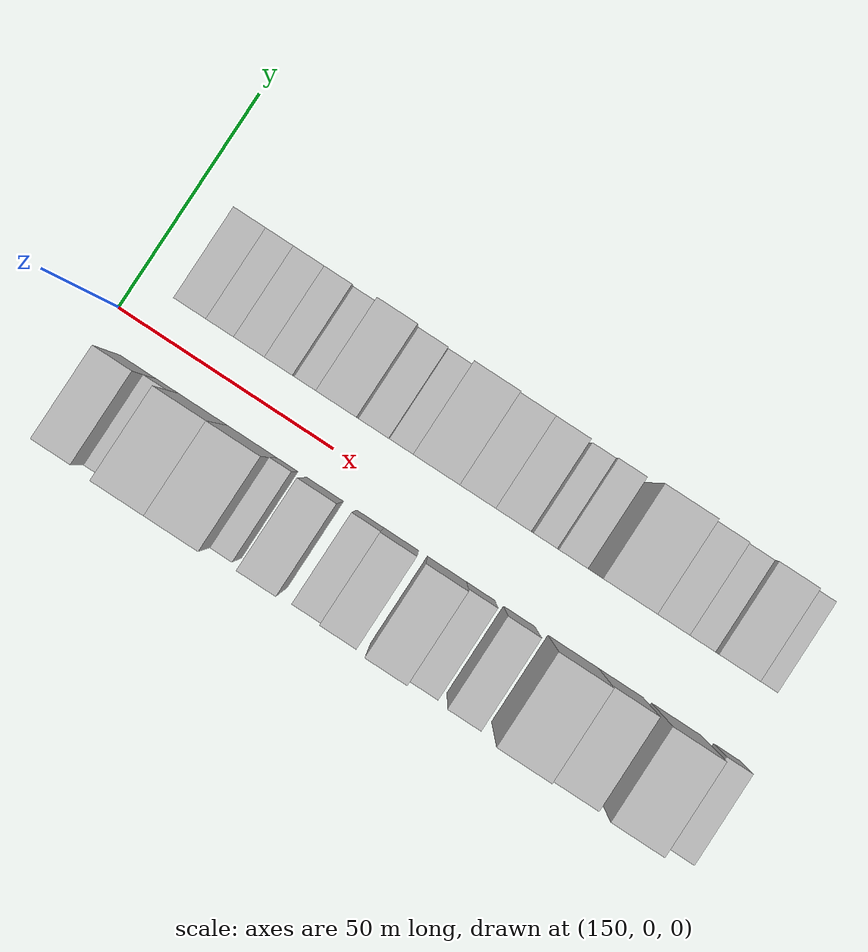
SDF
<sdf version="1.6">
 <world name="default">
  <model name="building_17">
   <static>1</static>
   <pose>164.9590 17.5000 0 0.000000 0.000000 1.570796</pose>
   <link name="link">
    <pose>0 0 7.50 0 0 0</pose>
    <collision name="collision"><geometry><box><size>20.0000 7.0706 15.0000</size></box></geometry></collision>
    <visual name="visual">
     <cast_shadows>0</cast_shadows>
     <geometry><box><size>20.0000 7.0706 15.0000</size></box></geometry>
     <material>
      <script>
       <uri>model://HANNAS_wall/materials/scripts</uri>
       <uri>model://HANNAS_wall/materials/textures</uri>
       <name>vrc/HANNAS_wall</name>
      </script>
     </material>
    </visual>
   </link>
  </model>
  <model name="building_18">
   <static>1</static>
   <pose>171.5373 17.5000 0 0.000000 0.000000 1.570796</pose>
   <link name="link">
    <pose>0 0 7.50 0 0 0</pose>
    <collision name="collision"><geometry><box><size>20.0000 6.0860 15.0000</size></box></geometry></collision>
    <visual name="visual">
     <cast_shadows>0</cast_shadows>
     <geometry><box><size>20.0000 6.0860 15.0000</size></box></geometry>
     <material>
      <script>
       <uri>model://HANNAS_wall/materials/scripts</uri>
       <uri>model://HANNAS_wall/materials/textures</uri>
       <name>vrc/HANNAS_wall</name>
      </script>
     </material>
    </visual>
   </link>
  </model>
  <model name="building_19">
   <static>1</static>
   <pose>177.9470 17.5000 0 0.000000 0.000000 1.570796</pose>
   <link name="link">
    <pose>0 0 7.50 0 0 0</pose>
    <collision name="collision"><geometry><box><size>20.0000 6.7334 15.0000</size></box></geometry></collision>
    <visual name="visual">
     <cast_shadows>0</cast_shadows>
     <geometry><box><size>20.0000 6.7334 15.0000</size></box></geometry>
     <material>
      <script>
       <uri>model://HANNAS_wall/materials/scripts</uri>
       <uri>model://HANNAS_wall/materials/textures</uri>
       <name>vrc/HANNAS_wall</name>
      </script>
     </material>
    </visual>
   </link>
  </model>
  <model name="building_20">
   <static>1</static>
   <pose>184.3895 17.5000 0 0.000000 0.000000 1.570796</pose>
   <link name="link">
    <pose>0 0 7.50 0 0 0</pose>
    <collision name="collision"><geometry><box><size>20.0000 6.1515 15.0000</size></box></geometry></collision>
    <visual name="visual">
     <cast_shadows>0</cast_shadows>
     <geometry><box><size>20.0000 6.1515 15.0000</size></box></geometry>
     <material>
      <script>
       <uri>model://HANNAS_wall/materials/scripts</uri>
       <uri>model://HANNAS_wall/materials/textures</uri>
       <name>vrc/HANNAS_wall</name>
      </script>
     </material>
    </visual>
   </link>
  </model>
  <model name="building_21">
   <static>1</static>
   <pose>190.3441 17.5000 0 0.000000 0.000000 1.570796</pose>
   <link name="link">
    <pose>0 0 6.00 0 0 0</pose>
    <collision name="collision"><geometry><box><size>20.0000 5.7578 12.0000</size></box></geometry></collision>
    <visual name="visual">
     <cast_shadows>0</cast_shadows>
     <geometry><box><size>20.0000 5.7578 12.0000</size></box></geometry>
     <material>
      <script>
       <uri>model://HANNAS_wall/materials/scripts</uri>
       <uri>model://HANNAS_wall/materials/textures</uri>
       <name>vrc/HANNAS_wall</name>
      </script>
     </material>
    </visual>
   </link>
  </model>
  <model name="building_22">
   <static>1</static>
   <pose>197.5777 17.5000 0 0.000000 0.000000 1.570796</pose>
   <link name="link">
    <pose>0 0 10.50 0 0 0</pose>
    <collision name="collision"><geometry><box><size>20.0000 8.7095 21.0000</size></box></geometry></collision>
    <visual name="visual">
     <cast_shadows>0</cast_shadows>
     <geometry><box><size>20.0000 8.7095 21.0000</size></box></geometry>
     <material>
      <script>
       <uri>model://HANNAS_wall/materials/scripts</uri>
       <uri>model://HANNAS_wall/materials/textures</uri>
       <name>vrc/HANNAS_wall</name>
      </script>
     </material>
    </visual>
   </link>
  </model>
  <model name="building_23">
   <static>1</static>
   <pose>205.2382 17.5000 0 0.000000 0.000000 1.570796</pose>
   <link name="link">
    <pose>0 0 7.50 0 0 0</pose>
    <collision name="collision"><geometry><box><size>20.0000 6.6115 15.0000</size></box></geometry></collision>
    <visual name="visual">
     <cast_shadows>0</cast_shadows>
     <geometry><box><size>20.0000 6.6115 15.0000</size></box></geometry>
     <material>
      <script>
       <uri>model://HANNAS_wall/materials/scripts</uri>
       <uri>model://HANNAS_wall/materials/textures</uri>
       <name>vrc/HANNAS_wall</name>
      </script>
     </material>
    </visual>
   </link>
  </model>
  <model name="building_24">
   <static>1</static>
   <pose>211.2773 17.5000 0 0.000000 0.000000 1.570796</pose>
   <link name="link">
    <pose>0 0 6.00 0 0 0</pose>
    <collision name="collision"><geometry><box><size>20.0000 5.4667 12.0000</size></box></geometry></collision>
    <visual name="visual">
     <cast_shadows>0</cast_shadows>
     <geometry><box><size>20.0000 5.4667 12.0000</size></box></geometry>
     <material>
      <script>
       <uri>model://HANNAS_wall/materials/scripts</uri>
       <uri>model://HANNAS_wall/materials/textures</uri>
       <name>vrc/HANNAS_wall</name>
      </script>
     </material>
    </visual>
   </link>
  </model>
  <model name="building_25">
   <static>1</static>
   <pose>218.9881 17.5000 0 0.000000 0.000000 1.570796</pose>
   <link name="link">
    <pose>0 0 10.50 0 0 0</pose>
    <collision name="collision"><geometry><box><size>20.0000 9.9550 21.0000</size></box></geometry></collision>
    <visual name="visual">
     <cast_shadows>0</cast_shadows>
     <geometry><box><size>20.0000 9.9550 21.0000</size></box></geometry>
     <material>
      <script>
       <uri>model://HANNAS_wall/materials/scripts</uri>
       <uri>model://HANNAS_wall/materials/textures</uri>
       <name>vrc/HANNAS_wall</name>
      </script>
     </material>
    </visual>
   </link>
  </model>
  <model name="building_26">
   <static>1</static>
   <pose>227.8656 17.5000 0 0.000000 0.000000 1.570796</pose>
   <link name="link">
    <pose>0 0 9.00 0 0 0</pose>
    <collision name="collision"><geometry><box><size>20.0000 7.7998 18.0000</size></box></geometry></collision>
    <visual name="visual">
     <cast_shadows>0</cast_shadows>
     <geometry><box><size>20.0000 7.7998 18.0000</size></box></geometry>
     <material>
      <script>
       <uri>model://HANNAS_wall/materials/scripts</uri>
       <uri>model://HANNAS_wall/materials/textures</uri>
       <name>vrc/HANNAS_wall</name>
      </script>
     </material>
    </visual>
   </link>
  </model>
  <model name="building_27">
   <static>1</static>
   <pose>235.5774 17.5000 0 0.000000 0.000000 1.570796</pose>
   <link name="link">
    <pose>0 0 9.00 0 0 0</pose>
    <collision name="collision"><geometry><box><size>20.0000 7.6239 18.0000</size></box></geometry></collision>
    <visual name="visual">
     <cast_shadows>0</cast_shadows>
     <geometry><box><size>20.0000 7.6239 18.0000</size></box></geometry>
     <material>
      <script>
       <uri>model://HANNAS_wall/materials/scripts</uri>
       <uri>model://HANNAS_wall/materials/textures</uri>
       <name>vrc/HANNAS_wall</name>
      </script>
     </material>
    </visual>
   </link>
  </model>
  <model name="building_28">
   <static>1</static>
   <pose>243.0308 17.5000 0 0.000000 0.000000 1.570796</pose>
   <link name="link">
    <pose>0 0 6.00 0 0 0</pose>
    <collision name="collision"><geometry><box><size>20.0000 5.2829 12.0000</size></box></geometry></collision>
    <visual name="visual">
     <cast_shadows>0</cast_shadows>
     <geometry><box><size>20.0000 5.2829 12.0000</size></box></geometry>
     <material>
      <script>
       <uri>model://HANNAS_wall/materials/scripts</uri>
       <uri>model://HANNAS_wall/materials/textures</uri>
       <name>vrc/HANNAS_wall</name>
      </script>
     </material>
    </visual>
   </link>
  </model>
  <model name="building_29">
   <static>1</static>
   <pose>248.8422 17.5000 0 0.000000 0.000000 1.570796</pose>
   <link name="link">
    <pose>0 0 7.50 0 0 0</pose>
    <collision name="collision"><geometry><box><size>20.0000 6.3400 15.0000</size></box></geometry></collision>
    <visual name="visual">
     <cast_shadows>0</cast_shadows>
     <geometry><box><size>20.0000 6.3400 15.0000</size></box></geometry>
     <material>
      <script>
       <uri>model://HANNAS_wall/materials/scripts</uri>
       <uri>model://HANNAS_wall/materials/textures</uri>
       <name>vrc/HANNAS_wall</name>
      </script>
     </material>
    </visual>
   </link>
  </model>
  <model name="building_30">
   <static>1</static>
   <pose>259.7139 17.5000 0 0.000000 0.000000 1.570796</pose>
   <link name="link">
    <pose>0 0 12.00 0 0 0</pose>
    <collision name="collision"><geometry><box><size>20.0000 11.4034 24.0000</size></box></geometry></collision>
    <visual name="visual">
     <cast_shadows>0</cast_shadows>
     <geometry><box><size>20.0000 11.4034 24.0000</size></box></geometry>
     <material>
      <script>
       <uri>model://HANNAS_wall/materials/scripts</uri>
       <uri>model://HANNAS_wall/materials/textures</uri>
       <name>vrc/HANNAS_wall</name>
      </script>
     </material>
    </visual>
   </link>
  </model>
  <model name="building_31">
   <static>1</static>
   <pose>269.4701 17.5000 0 0.000000 0.000000 1.570796</pose>
   <link name="link">
    <pose>0 0 9.00 0 0 0</pose>
    <collision name="collision"><geometry><box><size>20.0000 8.1089 18.0000</size></box></geometry></collision>
    <visual name="visual">
     <cast_shadows>0</cast_shadows>
     <geometry><box><size>20.0000 8.1089 18.0000</size></box></geometry>
     <material>
      <script>
       <uri>model://HANNAS_wall/materials/scripts</uri>
       <uri>model://HANNAS_wall/materials/textures</uri>
       <name>vrc/HANNAS_wall</name>
      </script>
     </material>
    </visual>
   </link>
  </model>
  <model name="building_32">
   <static>1</static>
   <pose>276.6432 17.5000 0 0.000000 0.000000 1.570796</pose>
   <link name="link">
    <pose>0 0 7.50 0 0 0</pose>
    <collision name="collision"><geometry><box><size>20.0000 6.2373 15.0000</size></box></geometry></collision>
    <visual name="visual">
     <cast_shadows>0</cast_shadows>
     <geometry><box><size>20.0000 6.2373 15.0000</size></box></geometry>
     <material>
      <script>
       <uri>model://HANNAS_wall/materials/scripts</uri>
       <uri>model://HANNAS_wall/materials/textures</uri>
       <name>vrc/HANNAS_wall</name>
      </script>
     </material>
    </visual>
   </link>
  </model>
  <model name="building_33">
   <static>1</static>
   <pose>284.2250 17.5000 0 0.000000 0.000000 1.570796</pose>
   <link name="link">
    <pose>0 0 9.00 0 0 0</pose>
    <collision name="collision"><geometry><box><size>20.0000 8.9263 18.0000</size></box></geometry></collision>
    <visual name="visual">
     <cast_shadows>0</cast_shadows>
     <geometry><box><size>20.0000 8.9263 18.0000</size></box></geometry>
     <material>
      <script>
       <uri>model://HANNAS_wall/materials/scripts</uri>
       <uri>model://HANNAS_wall/materials/textures</uri>
       <name>vrc/HANNAS_wall</name>
      </script>
     </material>
    </visual>
   </link>
  </model>
  <model name="building_34">
   <static>1</static>
   <pose>291.4401 17.5000 0 0.000000 0.000000 1.570796</pose>
   <link name="link">
    <pose>0 0 6.00 0 0 0</pose>
    <collision name="collision"><geometry><box><size>20.0000 5.5039 12.0000</size></box></geometry></collision>
    <visual name="visual">
     <cast_shadows>0</cast_shadows>
     <geometry><box><size>20.0000 5.5039 12.0000</size></box></geometry>
     <material>
      <script>
       <uri>model://HANNAS_wall/materials/scripts</uri>
       <uri>model://HANNAS_wall/materials/textures</uri>
       <name>vrc/HANNAS_wall</name>
      </script>
     </material>
    </visual>
   </link>
  </model>
  <model name="building_49">
   <static>1</static>
   <pose>159.5983 -17.5000 0 0.000000 0.000000 1.570796</pose>
   <link name="link">
    <pose>0 0 10.50 0 0 0</pose>
    <collision name="collision"><geometry><box><size>20.0000 8.5033 21.0000</size></box></geometry></collision>
    <visual name="visual">
     <cast_shadows>0</cast_shadows>
     <geometry><box><size>20.0000 8.5033 21.0000</size></box></geometry>
     <material>
      <script>
       <uri>model://HANNAS_wall/materials/scripts</uri>
       <uri>model://HANNAS_wall/materials/textures</uri>
       <name>vrc/HANNAS_wall</name>
      </script>
     </material>
    </visual>
   </link>
  </model>
  <model name="building_50">
   <static>1</static>
   <pose>166.4137 -17.5000 0 0.000000 0.000000 1.570796</pose>
   <link name="link">
    <pose>0 0 6.00 0 0 0</pose>
    <collision name="collision"><geometry><box><size>20.0000 5.1275 12.0000</size></box></geometry></collision>
    <visual name="visual">
     <cast_shadows>0</cast_shadows>
     <geometry><box><size>20.0000 5.1275 12.0000</size></box></geometry>
     <material>
      <script>
       <uri>model://HANNAS_wall/materials/scripts</uri>
       <uri>model://HANNAS_wall/materials/textures</uri>
       <name>vrc/HANNAS_wall</name>
      </script>
     </material>
    </visual>
   </link>
  </model>
  <model name="building_51">
   <static>1</static>
   <pose>174.6377 -17.5000 0 0.000000 0.000000 1.570796</pose>
   <link name="link">
    <pose>0 0 12.00 0 0 0</pose>
    <collision name="collision"><geometry><box><size>20.0000 11.3205 24.0000</size></box></geometry></collision>
    <visual name="visual">
     <cast_shadows>0</cast_shadows>
     <geometry><box><size>20.0000 11.3205 24.0000</size></box></geometry>
     <material>
      <script>
       <uri>model://HANNAS_wall/materials/scripts</uri>
       <uri>model://HANNAS_wall/materials/textures</uri>
       <name>vrc/HANNAS_wall</name>
      </script>
     </material>
    </visual>
   </link>
  </model>
  <model name="building_52">
   <static>1</static>
   <pose>186.0555 -17.5000 0 0.000000 0.000000 1.570796</pose>
   <link name="link">
    <pose>0 0 12.00 0 0 0</pose>
    <collision name="collision"><geometry><box><size>20.0000 11.5151 24.0000</size></box></geometry></collision>
    <visual name="visual">
     <cast_shadows>0</cast_shadows>
     <geometry><box><size>20.0000 11.5151 24.0000</size></box></geometry>
     <material>
      <script>
       <uri>model://HANNAS_wall/materials/scripts</uri>
       <uri>model://HANNAS_wall/materials/textures</uri>
       <name>vrc/HANNAS_wall</name>
      </script>
     </material>
    </visual>
   </link>
  </model>
  <model name="building_53">
   <static>1</static>
   <pose>194.2568 -17.5000 0 0.000000 0.000000 1.570796</pose>
   <link name="link">
    <pose>0 0 6.00 0 0 0</pose>
    <collision name="collision"><geometry><box><size>20.0000 4.8873 12.0000</size></box></geometry></collision>
    <visual name="visual">
     <cast_shadows>0</cast_shadows>
     <geometry><box><size>20.0000 4.8873 12.0000</size></box></geometry>
     <material>
      <script>
       <uri>model://HANNAS_wall/materials/scripts</uri>
       <uri>model://HANNAS_wall/materials/textures</uri>
       <name>vrc/HANNAS_wall</name>
      </script>
     </material>
    </visual>
   </link>
  </model>
  <model name="building_54">
   <static>1</static>
   <pose>202.9828 -17.5000 0 0.000000 0.000000 1.570796</pose>
   <link name="link">
    <pose>0 0 9.00 0 0 0</pose>
    <collision name="collision"><geometry><box><size>20.0000 8.5646 18.0000</size></box></geometry></collision>
    <visual name="visual">
     <cast_shadows>0</cast_shadows>
     <geometry><box><size>20.0000 8.5646 18.0000</size></box></geometry>
     <material>
      <script>
       <uri>model://HANNAS_wall/materials/scripts</uri>
       <uri>model://HANNAS_wall/materials/textures</uri>
       <name>vrc/HANNAS_wall</name>
      </script>
     </material>
    </visual>
   </link>
  </model>
  <model name="building_55">
   <static>1</static>
   <pose>213.4610 -17.5000 0 0.000000 0.000000 1.570796</pose>
   <link name="link">
    <pose>0 0 7.50 0 0 0</pose>
    <collision name="collision"><geometry><box><size>20.0000 6.3919 15.0000</size></box></geometry></collision>
    <visual name="visual">
     <cast_shadows>0</cast_shadows>
     <geometry><box><size>20.0000 6.3919 15.0000</size></box></geometry>
     <material>
      <script>
       <uri>model://HANNAS_wall/materials/scripts</uri>
       <uri>model://HANNAS_wall/materials/textures</uri>
       <name>vrc/HANNAS_wall</name>
      </script>
     </material>
    </visual>
   </link>
  </model>
  <model name="building_56">
   <static>1</static>
   <pose>220.6392 -17.5000 0 0.000000 0.000000 1.570796</pose>
   <link name="link">
    <pose>0 0 9.00 0 0 0</pose>
    <collision name="collision"><geometry><box><size>20.0000 7.9646 18.0000</size></box></geometry></collision>
    <visual name="visual">
     <cast_shadows>0</cast_shadows>
     <geometry><box><size>20.0000 7.9646 18.0000</size></box></geometry>
     <material>
      <script>
       <uri>model://HANNAS_wall/materials/scripts</uri>
       <uri>model://HANNAS_wall/materials/textures</uri>
       <name>vrc/HANNAS_wall</name>
      </script>
     </material>
    </visual>
   </link>
  </model>
  <model name="building_57">
   <static>1</static>
   <pose>231.1489 -17.5000 0 0.000000 0.000000 1.570796</pose>
   <link name="link">
    <pose>0 0 10.50 0 0 0</pose>
    <collision name="collision"><geometry><box><size>20.0000 9.0548 21.0000</size></box></geometry></collision>
    <visual name="visual">
     <cast_shadows>0</cast_shadows>
     <geometry><box><size>20.0000 9.0548 21.0000</size></box></geometry>
     <material>
      <script>
       <uri>model://HANNAS_wall/materials/scripts</uri>
       <uri>model://HANNAS_wall/materials/textures</uri>
       <name>vrc/HANNAS_wall</name>
      </script>
     </material>
    </visual>
   </link>
  </model>
  <model name="building_58">
   <static>1</static>
   <pose>238.9492 -17.5000 0 0.000000 0.000000 1.570796</pose>
   <link name="link">
    <pose>0 0 7.50 0 0 0</pose>
    <collision name="collision"><geometry><box><size>20.0000 6.5456 15.0000</size></box></geometry></collision>
    <visual name="visual">
     <cast_shadows>0</cast_shadows>
     <geometry><box><size>20.0000 6.5456 15.0000</size></box></geometry>
     <material>
      <script>
       <uri>model://HANNAS_wall/materials/scripts</uri>
       <uri>model://HANNAS_wall/materials/textures</uri>
       <name>vrc/HANNAS_wall</name>
      </script>
     </material>
    </visual>
   </link>
  </model>
  <model name="building_59">
   <static>1</static>
   <pose>247.8548 -17.5000 0 0.000000 0.000000 1.570796</pose>
   <link name="link">
    <pose>0 0 9.00 0 0 0</pose>
    <collision name="collision"><geometry><box><size>20.0000 7.2658 18.0000</size></box></geometry></collision>
    <visual name="visual">
     <cast_shadows>0</cast_shadows>
     <geometry><box><size>20.0000 7.2658 18.0000</size></box></geometry>
     <material>
      <script>
       <uri>model://HANNAS_wall/materials/scripts</uri>
       <uri>model://HANNAS_wall/materials/textures</uri>
       <name>vrc/HANNAS_wall</name>
      </script>
     </material>
    </visual>
   </link>
  </model>
  <model name="building_60">
   <static>1</static>
   <pose>260.3093 -17.5000 0 0.000000 0.000000 1.570796</pose>
   <link name="link">
    <pose>0 0 12.00 0 0 0</pose>
    <collision name="collision"><geometry><box><size>20.0000 11.6432 24.0000</size></box></geometry></collision>
    <visual name="visual">
     <cast_shadows>0</cast_shadows>
     <geometry><box><size>20.0000 11.6432 24.0000</size></box></geometry>
     <material>
      <script>
       <uri>model://HANNAS_wall/materials/scripts</uri>
       <uri>model://HANNAS_wall/materials/textures</uri>
       <name>vrc/HANNAS_wall</name>
      </script>
     </material>
    </visual>
   </link>
  </model>
  <model name="building_61">
   <static>1</static>
   <pose>271.2537 -17.5000 0 0.000000 0.000000 1.570796</pose>
   <link name="link">
    <pose>0 0 10.50 0 0 0</pose>
    <collision name="collision"><geometry><box><size>20.0000 10.2456 21.0000</size></box></geometry></collision>
    <visual name="visual">
     <cast_shadows>0</cast_shadows>
     <geometry><box><size>20.0000 10.2456 21.0000</size></box></geometry>
     <material>
      <script>
       <uri>model://HANNAS_wall/materials/scripts</uri>
       <uri>model://HANNAS_wall/materials/textures</uri>
       <name>vrc/HANNAS_wall</name>
      </script>
     </material>
    </visual>
   </link>
  </model>
  <model name="building_62">
   <static>1</static>
   <pose>284.0386 -17.5000 0 0.000000 0.000000 1.570796</pose>
   <link name="link">
    <pose>0 0 12.00 0 0 0</pose>
    <collision name="collision"><geometry><box><size>20.0000 11.3242 24.0000</size></box></geometry></collision>
    <visual name="visual">
     <cast_shadows>0</cast_shadows>
     <geometry><box><size>20.0000 11.3242 24.0000</size></box></geometry>
     <material>
      <script>
       <uri>model://HANNAS_wall/materials/scripts</uri>
       <uri>model://HANNAS_wall/materials/textures</uri>
       <name>vrc/HANNAS_wall</name>
      </script>
     </material>
    </visual>
   </link>
  </model>
  <model name="building_63">
   <static>1</static>
   <pose>295.6385 -17.5000 0 0.000000 0.000000 1.570796</pose>
   <link name="link">
    <pose>0 0 6.00 0 0 0</pose>
    <collision name="collision"><geometry><box><size>20.0000 5.8757 12.0000</size></box></geometry></collision>
    <visual name="visual">
     <cast_shadows>0</cast_shadows>
     <geometry><box><size>20.0000 5.8757 12.0000</size></box></geometry>
     <material>
      <script>
       <uri>model://HANNAS_wall/materials/scripts</uri>
       <uri>model://HANNAS_wall/materials/textures</uri>
       <name>vrc/HANNAS_wall</name>
      </script>
     </material>
    </visual>
   </link>
  </model>
 </world>
</sdf>
